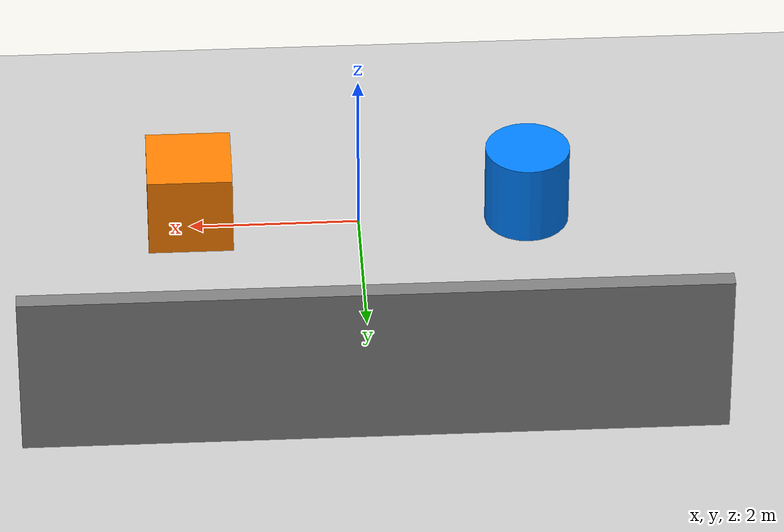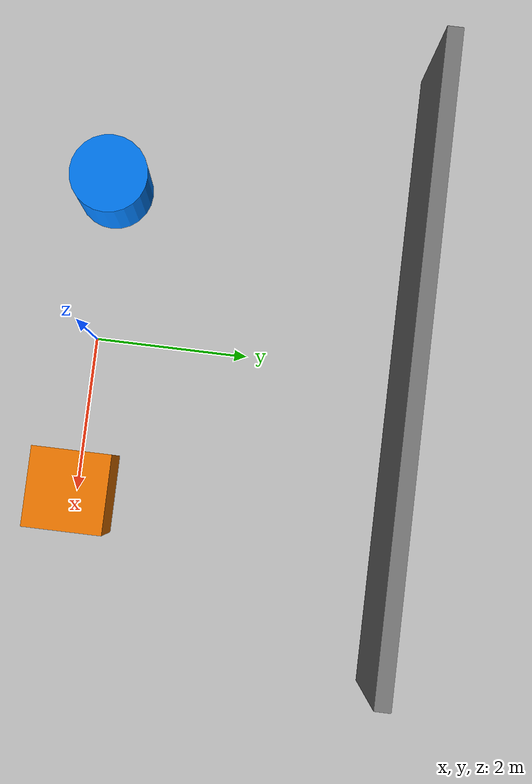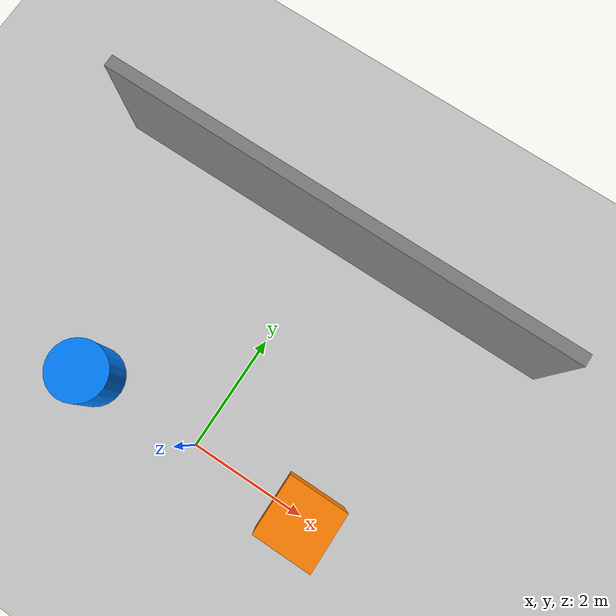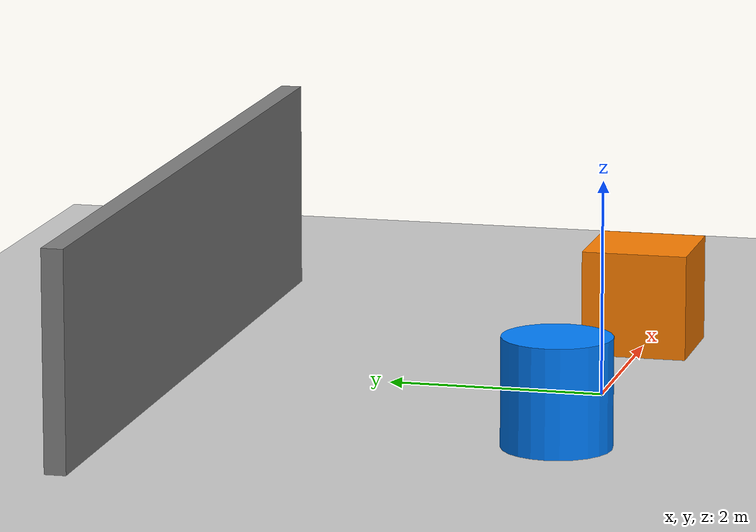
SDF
<?xml version="1.0" ?>
<sdf version="1.8">
  <world name="emu_testing_world">

    <!-- Physics settings -->
    <physics name="1ms" type="ignored">
      <max_step_size>0.001</max_step_size>
      <real_time_factor>1.0</real_time_factor>
    </physics>

    <!-- Scene settings -->
    <scene>
      <ambient>0.4 0.4 0.4 1.0</ambient>
      <background>0.7 0.7 0.7 1.0</background>
      <shadows>true</shadows>
    </scene>

    <!-- Lighting -->
    <light type="directional" name="sun">
      <cast_shadows>true</cast_shadows>
      <pose>0 0 10 0 0 0</pose>
      <diffuse>0.8 0.8 0.8 1</diffuse>
      <specular>0.2 0.2 0.2 1</specular>
      <attenuation>
        <range>1000</range>
        <constant>0.9</constant>
        <linear>0.01</linear>
        <quadratic>0.001</quadratic>
      </attenuation>
      <direction>-0.5 0.1 -0.9</direction>
    </light>

    <!-- Ground plane -->
    <model name="ground_plane">
      <static>true</static>
      <link name="link">
        <collision name="collision">
          <geometry>
            <plane>
              <normal>0 0 1</normal>
              <size>100 100</size>
            </plane>
          </geometry>
        </collision>
        <visual name="visual">
          <geometry>
            <plane>
              <normal>0 0 1</normal>
              <size>100 100</size>
            </plane>
          </geometry>
          <material>
            <ambient>0.8 0.8 0.8 1</ambient>
            <diffuse>0.8 0.8 0.8 1</diffuse>
            <specular>0.8 0.8 0.8 1</specular>
          </material>
        </visual>
      </link>
    </model>

    <!-- Test objects for interaction -->
    <model name="test_box">
      <pose>2 0 0.5 0 0 0</pose>
      <link name="link">
        <collision name="collision">
          <geometry>
            <box>
              <size>1 1 1</size>
            </box>
          </geometry>
        </collision>
        <visual name="visual">
          <geometry>
            <box>
              <size>1 1 1</size>
            </box>
          </geometry>
          <material>
            <ambient>1 0.5 0 1</ambient>
            <diffuse>1 0.5 0 1</diffuse>
          </material>
        </visual>
        <inertial>
          <mass>1.0</mass>
          <inertia>
            <ixx>0.166667</ixx>
            <ixy>0</ixy>
            <ixz>0</ixz>
            <iyy>0.166667</iyy>
            <iyz>0</iyz>
            <izz>0.166667</izz>
          </inertia>
        </inertial>
      </link>
    </model>

    <!-- Test cylinder -->
    <model name="test_cylinder">
      <pose>-2 0 0.5 0 0 0</pose>
      <link name="link">
        <collision name="collision">
          <geometry>
            <cylinder>
              <radius>0.5</radius>
              <length>1.0</length>
            </cylinder>
          </geometry>
        </collision>
        <visual name="visual">
          <geometry>
            <cylinder>
              <radius>0.5</radius>
              <length>1.0</length>
            </cylinder>
          </geometry>
          <material>
            <ambient>0 0.5 1 1</ambient>
            <diffuse>0 0.5 1 1</diffuse>
          </material>
        </visual>
        <inertial>
          <mass>0.5</mass>
          <inertia>
            <ixx>0.145833</ixx>
            <ixy>0</ixy>
            <ixz>0</ixz>
            <iyy>0.145833</iyy>
            <iyz>0</iyz>
            <izz>0.125</izz>
          </inertia>
        </inertial>
      </link>
    </model>

    <!-- Test wall -->
    <model name="test_wall">
      <pose>0 4 1 0 0 0</pose>
      <static>true</static>
      <link name="link">
        <collision name="collision">
          <geometry>
            <box>
              <size>8 0.2 2</size>
            </box>
          </geometry>
        </collision>
        <visual name="visual">
          <geometry>
            <box>
              <size>8 0.2 2</size>
            </box>
          </geometry>
          <material>
            <ambient>0.5 0.5 0.5 1</ambient>
            <diffuse>0.5 0.5 0.5 1</diffuse>
          </material>
        </visual>
      </link>
    </model>

    <!-- Plugin for physics -->
    <plugin
      filename="libgz-sim-physics-system.so"
      name="gz::sim::systems::Physics">
    </plugin>

    <!-- Plugin for user commands -->
    <plugin
      filename="libgz-sim-user-commands-system.so"
      name="gz::sim::systems::UserCommands">
    </plugin>

    <!-- Plugin for scene broadcasting -->
    <plugin
      filename="libgz-sim-scene-broadcaster-system.so"
      name="gz::sim::systems::SceneBroadcaster">
    </plugin>

  </world>
</sdf>
